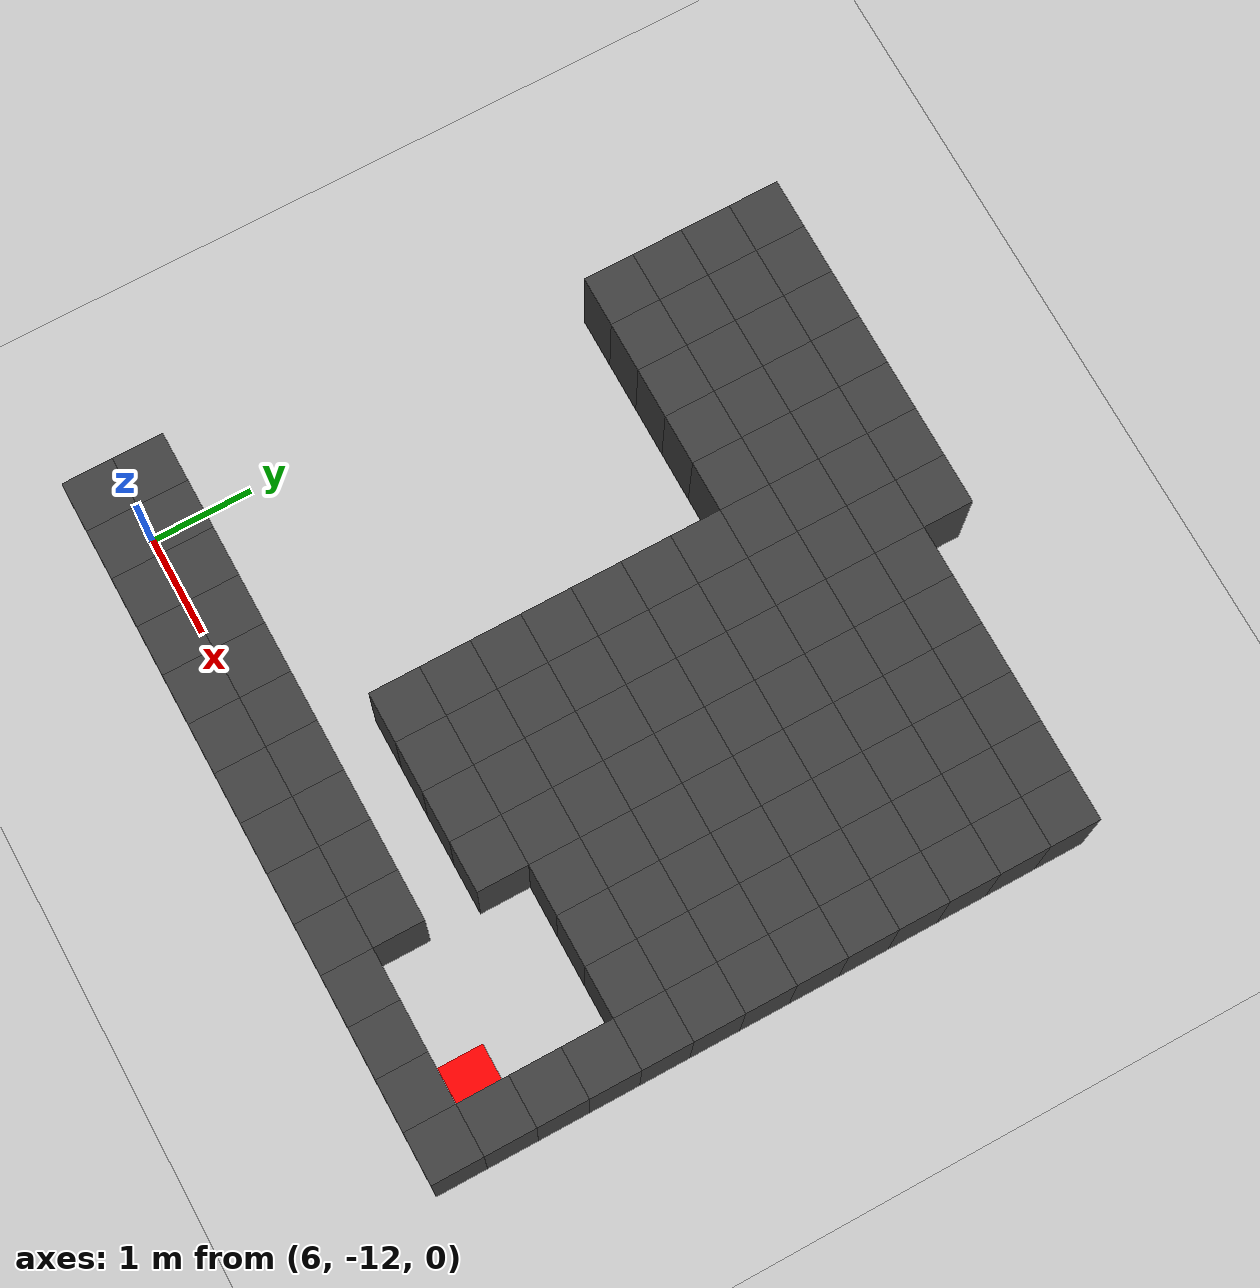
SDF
<sdf version="1.7">
 <world name="map_10777">
  <model name="ground_plane">
   <static>true</static>
   <link name="link">
    <collision name="collision">
     <geometry><plane><normal>0 0 1</normal><size>200 200</size></plane></geometry>
    </collision>
    <visual name="visual">
     <geometry><plane><normal>0 0 1</normal><size>200 200</size></plane></geometry>
     <material><ambient>0.8 0.8 0.8 1</ambient><diffuse>0.8 0.8 0.8 1</diffuse></material>
    </visual>
   </link>
  </model>
  <model name="maze_environment">
   <static>true</static>
   <link name="wall_1602">
    <pose>6.250 -5.750 0.500 0 0 0</pose>
    <collision name="col"><geometry><box><size>0.5 0.5 1.0</size></box></geometry></collision>
    <visual name="vis">
     <geometry><box><size>0.5 0.5 1.0</size></box></geometry>
     <material><ambient>0.15 0.15 0.15 1</ambient><diffuse>0.25 0.25 0.25 1</diffuse></material>
    </visual>
   </link>
   <link name="wall_1603">
    <pose>6.750 -5.750 0.500 0 0 0</pose>
    <collision name="col"><geometry><box><size>0.5 0.5 1.0</size></box></geometry></collision>
    <visual name="vis">
     <geometry><box><size>0.5 0.5 1.0</size></box></geometry>
     <material><ambient>0.15 0.15 0.15 1</ambient><diffuse>0.25 0.25 0.25 1</diffuse></material>
    </visual>
   </link>
   <link name="wall_1604">
    <pose>7.250 -5.750 0.500 0 0 0</pose>
    <collision name="col"><geometry><box><size>0.5 0.5 1.0</size></box></geometry></collision>
    <visual name="vis">
     <geometry><box><size>0.5 0.5 1.0</size></box></geometry>
     <material><ambient>0.15 0.15 0.15 1</ambient><diffuse>0.25 0.25 0.25 1</diffuse></material>
    </visual>
   </link>
   <link name="wall_1605">
    <pose>7.750 -5.750 0.500 0 0 0</pose>
    <collision name="col"><geometry><box><size>0.5 0.5 1.0</size></box></geometry></collision>
    <visual name="vis">
     <geometry><box><size>0.5 0.5 1.0</size></box></geometry>
     <material><ambient>0.15 0.15 0.15 1</ambient><diffuse>0.25 0.25 0.25 1</diffuse></material>
    </visual>
   </link>
   <link name="wall_1606">
    <pose>8.250 -5.750 0.500 0 0 0</pose>
    <collision name="col"><geometry><box><size>0.5 0.5 1.0</size></box></geometry></collision>
    <visual name="vis">
     <geometry><box><size>0.5 0.5 1.0</size></box></geometry>
     <material><ambient>0.15 0.15 0.15 1</ambient><diffuse>0.25 0.25 0.25 1</diffuse></material>
    </visual>
   </link>
   <link name="wall_1607">
    <pose>8.750 -5.750 0.500 0 0 0</pose>
    <collision name="col"><geometry><box><size>0.5 0.5 1.0</size></box></geometry></collision>
    <visual name="vis">
     <geometry><box><size>0.5 0.5 1.0</size></box></geometry>
     <material><ambient>0.15 0.15 0.15 1</ambient><diffuse>0.25 0.25 0.25 1</diffuse></material>
    </visual>
   </link>
   <link name="wall_1608">
    <pose>9.250 -5.750 0.500 0 0 0</pose>
    <collision name="col"><geometry><box><size>0.5 0.5 1.0</size></box></geometry></collision>
    <visual name="vis">
     <geometry><box><size>0.5 0.5 1.0</size></box></geometry>
     <material><ambient>0.15 0.15 0.15 1</ambient><diffuse>0.25 0.25 0.25 1</diffuse></material>
    </visual>
   </link>
   <link name="wall_1641">
    <pose>6.250 -6.250 0.500 0 0 0</pose>
    <collision name="col"><geometry><box><size>0.5 0.5 1.0</size></box></geometry></collision>
    <visual name="vis">
     <geometry><box><size>0.5 0.5 1.0</size></box></geometry>
     <material><ambient>0.15 0.15 0.15 1</ambient><diffuse>0.25 0.25 0.25 1</diffuse></material>
    </visual>
   </link>
   <link name="wall_1642">
    <pose>6.750 -6.250 0.500 0 0 0</pose>
    <collision name="col"><geometry><box><size>0.5 0.5 1.0</size></box></geometry></collision>
    <visual name="vis">
     <geometry><box><size>0.5 0.5 1.0</size></box></geometry>
     <material><ambient>0.15 0.15 0.15 1</ambient><diffuse>0.25 0.25 0.25 1</diffuse></material>
    </visual>
   </link>
   <link name="wall_1643">
    <pose>7.250 -6.250 0.500 0 0 0</pose>
    <collision name="col"><geometry><box><size>0.5 0.5 1.0</size></box></geometry></collision>
    <visual name="vis">
     <geometry><box><size>0.5 0.5 1.0</size></box></geometry>
     <material><ambient>0.15 0.15 0.15 1</ambient><diffuse>0.25 0.25 0.25 1</diffuse></material>
    </visual>
   </link>
   <link name="wall_1644">
    <pose>7.750 -6.250 0.500 0 0 0</pose>
    <collision name="col"><geometry><box><size>0.5 0.5 1.0</size></box></geometry></collision>
    <visual name="vis">
     <geometry><box><size>0.5 0.5 1.0</size></box></geometry>
     <material><ambient>0.15 0.15 0.15 1</ambient><diffuse>0.25 0.25 0.25 1</diffuse></material>
    </visual>
   </link>
   <link name="wall_1645">
    <pose>8.250 -6.250 0.500 0 0 0</pose>
    <collision name="col"><geometry><box><size>0.5 0.5 1.0</size></box></geometry></collision>
    <visual name="vis">
     <geometry><box><size>0.5 0.5 1.0</size></box></geometry>
     <material><ambient>0.15 0.15 0.15 1</ambient><diffuse>0.25 0.25 0.25 1</diffuse></material>
    </visual>
   </link>
   <link name="wall_1646">
    <pose>8.750 -6.250 0.500 0 0 0</pose>
    <collision name="col"><geometry><box><size>0.5 0.5 1.0</size></box></geometry></collision>
    <visual name="vis">
     <geometry><box><size>0.5 0.5 1.0</size></box></geometry>
     <material><ambient>0.15 0.15 0.15 1</ambient><diffuse>0.25 0.25 0.25 1</diffuse></material>
    </visual>
   </link>
   <link name="wall_1647">
    <pose>9.250 -6.250 0.500 0 0 0</pose>
    <collision name="col"><geometry><box><size>0.5 0.5 1.0</size></box></geometry></collision>
    <visual name="vis">
     <geometry><box><size>0.5 0.5 1.0</size></box></geometry>
     <material><ambient>0.15 0.15 0.15 1</ambient><diffuse>0.25 0.25 0.25 1</diffuse></material>
    </visual>
   </link>
   <link name="wall_1648">
    <pose>9.750 -6.250 0.500 0 0 0</pose>
    <collision name="col"><geometry><box><size>0.5 0.5 1.0</size></box></geometry></collision>
    <visual name="vis">
     <geometry><box><size>0.5 0.5 1.0</size></box></geometry>
     <material><ambient>0.15 0.15 0.15 1</ambient><diffuse>0.25 0.25 0.25 1</diffuse></material>
    </visual>
   </link>
   <link name="wall_1649">
    <pose>10.250 -6.250 0.500 0 0 0</pose>
    <collision name="col"><geometry><box><size>0.5 0.5 1.0</size></box></geometry></collision>
    <visual name="vis">
     <geometry><box><size>0.5 0.5 1.0</size></box></geometry>
     <material><ambient>0.15 0.15 0.15 1</ambient><diffuse>0.25 0.25 0.25 1</diffuse></material>
    </visual>
   </link>
   <link name="wall_1650">
    <pose>10.750 -6.250 0.500 0 0 0</pose>
    <collision name="col"><geometry><box><size>0.5 0.5 1.0</size></box></geometry></collision>
    <visual name="vis">
     <geometry><box><size>0.5 0.5 1.0</size></box></geometry>
     <material><ambient>0.15 0.15 0.15 1</ambient><diffuse>0.25 0.25 0.25 1</diffuse></material>
    </visual>
   </link>
   <link name="wall_1651">
    <pose>11.250 -6.250 0.500 0 0 0</pose>
    <collision name="col"><geometry><box><size>0.5 0.5 1.0</size></box></geometry></collision>
    <visual name="vis">
     <geometry><box><size>0.5 0.5 1.0</size></box></geometry>
     <material><ambient>0.15 0.15 0.15 1</ambient><diffuse>0.25 0.25 0.25 1</diffuse></material>
    </visual>
   </link>
   <link name="wall_1652">
    <pose>11.750 -6.250 0.500 0 0 0</pose>
    <collision name="col"><geometry><box><size>0.5 0.5 1.0</size></box></geometry></collision>
    <visual name="vis">
     <geometry><box><size>0.5 0.5 1.0</size></box></geometry>
     <material><ambient>0.15 0.15 0.15 1</ambient><diffuse>0.25 0.25 0.25 1</diffuse></material>
    </visual>
   </link>
   <link name="wall_1653">
    <pose>12.250 -6.250 0.500 0 0 0</pose>
    <collision name="col"><geometry><box><size>0.5 0.5 1.0</size></box></geometry></collision>
    <visual name="vis">
     <geometry><box><size>0.5 0.5 1.0</size></box></geometry>
     <material><ambient>0.15 0.15 0.15 1</ambient><diffuse>0.25 0.25 0.25 1</diffuse></material>
    </visual>
   </link>
   <link name="wall_1680">
    <pose>6.250 -6.750 0.500 0 0 0</pose>
    <collision name="col"><geometry><box><size>0.5 0.5 1.0</size></box></geometry></collision>
    <visual name="vis">
     <geometry><box><size>0.5 0.5 1.0</size></box></geometry>
     <material><ambient>0.15 0.15 0.15 1</ambient><diffuse>0.25 0.25 0.25 1</diffuse></material>
    </visual>
   </link>
   <link name="wall_1681">
    <pose>6.750 -6.750 0.500 0 0 0</pose>
    <collision name="col"><geometry><box><size>0.5 0.5 1.0</size></box></geometry></collision>
    <visual name="vis">
     <geometry><box><size>0.5 0.5 1.0</size></box></geometry>
     <material><ambient>0.15 0.15 0.15 1</ambient><diffuse>0.25 0.25 0.25 1</diffuse></material>
    </visual>
   </link>
   <link name="wall_1682">
    <pose>7.250 -6.750 0.500 0 0 0</pose>
    <collision name="col"><geometry><box><size>0.5 0.5 1.0</size></box></geometry></collision>
    <visual name="vis">
     <geometry><box><size>0.5 0.5 1.0</size></box></geometry>
     <material><ambient>0.15 0.15 0.15 1</ambient><diffuse>0.25 0.25 0.25 1</diffuse></material>
    </visual>
   </link>
   <link name="wall_1683">
    <pose>7.750 -6.750 0.500 0 0 0</pose>
    <collision name="col"><geometry><box><size>0.5 0.5 1.0</size></box></geometry></collision>
    <visual name="vis">
     <geometry><box><size>0.5 0.5 1.0</size></box></geometry>
     <material><ambient>0.15 0.15 0.15 1</ambient><diffuse>0.25 0.25 0.25 1</diffuse></material>
    </visual>
   </link>
   <link name="wall_1684">
    <pose>8.250 -6.750 0.500 0 0 0</pose>
    <collision name="col"><geometry><box><size>0.5 0.5 1.0</size></box></geometry></collision>
    <visual name="vis">
     <geometry><box><size>0.5 0.5 1.0</size></box></geometry>
     <material><ambient>0.15 0.15 0.15 1</ambient><diffuse>0.25 0.25 0.25 1</diffuse></material>
    </visual>
   </link>
   <link name="wall_1685">
    <pose>8.750 -6.750 0.500 0 0 0</pose>
    <collision name="col"><geometry><box><size>0.5 0.5 1.0</size></box></geometry></collision>
    <visual name="vis">
     <geometry><box><size>0.5 0.5 1.0</size></box></geometry>
     <material><ambient>0.15 0.15 0.15 1</ambient><diffuse>0.25 0.25 0.25 1</diffuse></material>
    </visual>
   </link>
   <link name="wall_1686">
    <pose>9.250 -6.750 0.500 0 0 0</pose>
    <collision name="col"><geometry><box><size>0.5 0.5 1.0</size></box></geometry></collision>
    <visual name="vis">
     <geometry><box><size>0.5 0.5 1.0</size></box></geometry>
     <material><ambient>0.15 0.15 0.15 1</ambient><diffuse>0.25 0.25 0.25 1</diffuse></material>
    </visual>
   </link>
   <link name="wall_1687">
    <pose>9.750 -6.750 0.500 0 0 0</pose>
    <collision name="col"><geometry><box><size>0.5 0.5 1.0</size></box></geometry></collision>
    <visual name="vis">
     <geometry><box><size>0.5 0.5 1.0</size></box></geometry>
     <material><ambient>0.15 0.15 0.15 1</ambient><diffuse>0.25 0.25 0.25 1</diffuse></material>
    </visual>
   </link>
   <link name="wall_1688">
    <pose>10.250 -6.750 0.500 0 0 0</pose>
    <collision name="col"><geometry><box><size>0.5 0.5 1.0</size></box></geometry></collision>
    <visual name="vis">
     <geometry><box><size>0.5 0.5 1.0</size></box></geometry>
     <material><ambient>0.15 0.15 0.15 1</ambient><diffuse>0.25 0.25 0.25 1</diffuse></material>
    </visual>
   </link>
   <link name="wall_1689">
    <pose>10.750 -6.750 0.500 0 0 0</pose>
    <collision name="col"><geometry><box><size>0.5 0.5 1.0</size></box></geometry></collision>
    <visual name="vis">
     <geometry><box><size>0.5 0.5 1.0</size></box></geometry>
     <material><ambient>0.15 0.15 0.15 1</ambient><diffuse>0.25 0.25 0.25 1</diffuse></material>
    </visual>
   </link>
   <link name="wall_1690">
    <pose>11.250 -6.750 0.500 0 0 0</pose>
    <collision name="col"><geometry><box><size>0.5 0.5 1.0</size></box></geometry></collision>
    <visual name="vis">
     <geometry><box><size>0.5 0.5 1.0</size></box></geometry>
     <material><ambient>0.15 0.15 0.15 1</ambient><diffuse>0.25 0.25 0.25 1</diffuse></material>
    </visual>
   </link>
   <link name="wall_1691">
    <pose>11.750 -6.750 0.500 0 0 0</pose>
    <collision name="col"><geometry><box><size>0.5 0.5 1.0</size></box></geometry></collision>
    <visual name="vis">
     <geometry><box><size>0.5 0.5 1.0</size></box></geometry>
     <material><ambient>0.15 0.15 0.15 1</ambient><diffuse>0.25 0.25 0.25 1</diffuse></material>
    </visual>
   </link>
   <link name="wall_1692">
    <pose>12.250 -6.750 0.500 0 0 0</pose>
    <collision name="col"><geometry><box><size>0.5 0.5 1.0</size></box></geometry></collision>
    <visual name="vis">
     <geometry><box><size>0.5 0.5 1.0</size></box></geometry>
     <material><ambient>0.15 0.15 0.15 1</ambient><diffuse>0.25 0.25 0.25 1</diffuse></material>
    </visual>
   </link>
   <link name="wall_1719">
    <pose>6.250 -7.250 0.500 0 0 0</pose>
    <collision name="col"><geometry><box><size>0.5 0.5 1.0</size></box></geometry></collision>
    <visual name="vis">
     <geometry><box><size>0.5 0.5 1.0</size></box></geometry>
     <material><ambient>0.15 0.15 0.15 1</ambient><diffuse>0.25 0.25 0.25 1</diffuse></material>
    </visual>
   </link>
   <link name="wall_1720">
    <pose>6.750 -7.250 0.500 0 0 0</pose>
    <collision name="col"><geometry><box><size>0.5 0.5 1.0</size></box></geometry></collision>
    <visual name="vis">
     <geometry><box><size>0.5 0.5 1.0</size></box></geometry>
     <material><ambient>0.15 0.15 0.15 1</ambient><diffuse>0.25 0.25 0.25 1</diffuse></material>
    </visual>
   </link>
   <link name="wall_1721">
    <pose>7.250 -7.250 0.500 0 0 0</pose>
    <collision name="col"><geometry><box><size>0.5 0.5 1.0</size></box></geometry></collision>
    <visual name="vis">
     <geometry><box><size>0.5 0.5 1.0</size></box></geometry>
     <material><ambient>0.15 0.15 0.15 1</ambient><diffuse>0.25 0.25 0.25 1</diffuse></material>
    </visual>
   </link>
   <link name="wall_1722">
    <pose>7.750 -7.250 0.500 0 0 0</pose>
    <collision name="col"><geometry><box><size>0.5 0.5 1.0</size></box></geometry></collision>
    <visual name="vis">
     <geometry><box><size>0.5 0.5 1.0</size></box></geometry>
     <material><ambient>0.15 0.15 0.15 1</ambient><diffuse>0.25 0.25 0.25 1</diffuse></material>
    </visual>
   </link>
   <link name="wall_1723">
    <pose>8.250 -7.250 0.500 0 0 0</pose>
    <collision name="col"><geometry><box><size>0.5 0.5 1.0</size></box></geometry></collision>
    <visual name="vis">
     <geometry><box><size>0.5 0.5 1.0</size></box></geometry>
     <material><ambient>0.15 0.15 0.15 1</ambient><diffuse>0.25 0.25 0.25 1</diffuse></material>
    </visual>
   </link>
   <link name="wall_1724">
    <pose>8.750 -7.250 0.500 0 0 0</pose>
    <collision name="col"><geometry><box><size>0.5 0.5 1.0</size></box></geometry></collision>
    <visual name="vis">
     <geometry><box><size>0.5 0.5 1.0</size></box></geometry>
     <material><ambient>0.15 0.15 0.15 1</ambient><diffuse>0.25 0.25 0.25 1</diffuse></material>
    </visual>
   </link>
   <link name="wall_1725">
    <pose>9.250 -7.250 0.500 0 0 0</pose>
    <collision name="col"><geometry><box><size>0.5 0.5 1.0</size></box></geometry></collision>
    <visual name="vis">
     <geometry><box><size>0.5 0.5 1.0</size></box></geometry>
     <material><ambient>0.15 0.15 0.15 1</ambient><diffuse>0.25 0.25 0.25 1</diffuse></material>
    </visual>
   </link>
   <link name="wall_1726">
    <pose>9.750 -7.250 0.500 0 0 0</pose>
    <collision name="col"><geometry><box><size>0.5 0.5 1.0</size></box></geometry></collision>
    <visual name="vis">
     <geometry><box><size>0.5 0.5 1.0</size></box></geometry>
     <material><ambient>0.15 0.15 0.15 1</ambient><diffuse>0.25 0.25 0.25 1</diffuse></material>
    </visual>
   </link>
   <link name="wall_1727">
    <pose>10.250 -7.250 0.500 0 0 0</pose>
    <collision name="col"><geometry><box><size>0.5 0.5 1.0</size></box></geometry></collision>
    <visual name="vis">
     <geometry><box><size>0.5 0.5 1.0</size></box></geometry>
     <material><ambient>0.15 0.15 0.15 1</ambient><diffuse>0.25 0.25 0.25 1</diffuse></material>
    </visual>
   </link>
   <link name="wall_1728">
    <pose>10.750 -7.250 0.500 0 0 0</pose>
    <collision name="col"><geometry><box><size>0.5 0.5 1.0</size></box></geometry></collision>
    <visual name="vis">
     <geometry><box><size>0.5 0.5 1.0</size></box></geometry>
     <material><ambient>0.15 0.15 0.15 1</ambient><diffuse>0.25 0.25 0.25 1</diffuse></material>
    </visual>
   </link>
   <link name="wall_1729">
    <pose>11.250 -7.250 0.500 0 0 0</pose>
    <collision name="col"><geometry><box><size>0.5 0.5 1.0</size></box></geometry></collision>
    <visual name="vis">
     <geometry><box><size>0.5 0.5 1.0</size></box></geometry>
     <material><ambient>0.15 0.15 0.15 1</ambient><diffuse>0.25 0.25 0.25 1</diffuse></material>
    </visual>
   </link>
   <link name="wall_1730">
    <pose>11.750 -7.250 0.500 0 0 0</pose>
    <collision name="col"><geometry><box><size>0.5 0.5 1.0</size></box></geometry></collision>
    <visual name="vis">
     <geometry><box><size>0.5 0.5 1.0</size></box></geometry>
     <material><ambient>0.15 0.15 0.15 1</ambient><diffuse>0.25 0.25 0.25 1</diffuse></material>
    </visual>
   </link>
   <link name="wall_1731">
    <pose>12.250 -7.250 0.500 0 0 0</pose>
    <collision name="col"><geometry><box><size>0.5 0.5 1.0</size></box></geometry></collision>
    <visual name="vis">
     <geometry><box><size>0.5 0.5 1.0</size></box></geometry>
     <material><ambient>0.15 0.15 0.15 1</ambient><diffuse>0.25 0.25 0.25 1</diffuse></material>
    </visual>
   </link>
   <link name="wall_1766">
    <pose>8.750 -7.750 0.500 0 0 0</pose>
    <collision name="col"><geometry><box><size>0.5 0.5 1.0</size></box></geometry></collision>
    <visual name="vis">
     <geometry><box><size>0.5 0.5 1.0</size></box></geometry>
     <material><ambient>0.15 0.15 0.15 1</ambient><diffuse>0.25 0.25 0.25 1</diffuse></material>
    </visual>
   </link>
   <link name="wall_1767">
    <pose>9.250 -7.750 0.500 0 0 0</pose>
    <collision name="col"><geometry><box><size>0.5 0.5 1.0</size></box></geometry></collision>
    <visual name="vis">
     <geometry><box><size>0.5 0.5 1.0</size></box></geometry>
     <material><ambient>0.15 0.15 0.15 1</ambient><diffuse>0.25 0.25 0.25 1</diffuse></material>
    </visual>
   </link>
   <link name="wall_1768">
    <pose>9.750 -7.750 0.500 0 0 0</pose>
    <collision name="col"><geometry><box><size>0.5 0.5 1.0</size></box></geometry></collision>
    <visual name="vis">
     <geometry><box><size>0.5 0.5 1.0</size></box></geometry>
     <material><ambient>0.15 0.15 0.15 1</ambient><diffuse>0.25 0.25 0.25 1</diffuse></material>
    </visual>
   </link>
   <link name="wall_1769">
    <pose>10.250 -7.750 0.500 0 0 0</pose>
    <collision name="col"><geometry><box><size>0.5 0.5 1.0</size></box></geometry></collision>
    <visual name="vis">
     <geometry><box><size>0.5 0.5 1.0</size></box></geometry>
     <material><ambient>0.15 0.15 0.15 1</ambient><diffuse>0.25 0.25 0.25 1</diffuse></material>
    </visual>
   </link>
   <link name="wall_1770">
    <pose>10.750 -7.750 0.500 0 0 0</pose>
    <collision name="col"><geometry><box><size>0.5 0.5 1.0</size></box></geometry></collision>
    <visual name="vis">
     <geometry><box><size>0.5 0.5 1.0</size></box></geometry>
     <material><ambient>0.15 0.15 0.15 1</ambient><diffuse>0.25 0.25 0.25 1</diffuse></material>
    </visual>
   </link>
   <link name="wall_1771">
    <pose>11.250 -7.750 0.500 0 0 0</pose>
    <collision name="col"><geometry><box><size>0.5 0.5 1.0</size></box></geometry></collision>
    <visual name="vis">
     <geometry><box><size>0.5 0.5 1.0</size></box></geometry>
     <material><ambient>0.15 0.15 0.15 1</ambient><diffuse>0.25 0.25 0.25 1</diffuse></material>
    </visual>
   </link>
   <link name="wall_1772">
    <pose>11.750 -7.750 0.500 0 0 0</pose>
    <collision name="col"><geometry><box><size>0.5 0.5 1.0</size></box></geometry></collision>
    <visual name="vis">
     <geometry><box><size>0.5 0.5 1.0</size></box></geometry>
     <material><ambient>0.15 0.15 0.15 1</ambient><diffuse>0.25 0.25 0.25 1</diffuse></material>
    </visual>
   </link>
   <link name="wall_1773">
    <pose>12.250 -7.750 0.500 0 0 0</pose>
    <collision name="col"><geometry><box><size>0.5 0.5 1.0</size></box></geometry></collision>
    <visual name="vis">
     <geometry><box><size>0.5 0.5 1.0</size></box></geometry>
     <material><ambient>0.15 0.15 0.15 1</ambient><diffuse>0.25 0.25 0.25 1</diffuse></material>
    </visual>
   </link>
   <link name="wall_1808">
    <pose>8.750 -8.250 0.500 0 0 0</pose>
    <collision name="col"><geometry><box><size>0.5 0.5 1.0</size></box></geometry></collision>
    <visual name="vis">
     <geometry><box><size>0.5 0.5 1.0</size></box></geometry>
     <material><ambient>0.15 0.15 0.15 1</ambient><diffuse>0.25 0.25 0.25 1</diffuse></material>
    </visual>
   </link>
   <link name="wall_1809">
    <pose>9.250 -8.250 0.500 0 0 0</pose>
    <collision name="col"><geometry><box><size>0.5 0.5 1.0</size></box></geometry></collision>
    <visual name="vis">
     <geometry><box><size>0.5 0.5 1.0</size></box></geometry>
     <material><ambient>0.15 0.15 0.15 1</ambient><diffuse>0.25 0.25 0.25 1</diffuse></material>
    </visual>
   </link>
   <link name="wall_1810">
    <pose>9.750 -8.250 0.500 0 0 0</pose>
    <collision name="col"><geometry><box><size>0.5 0.5 1.0</size></box></geometry></collision>
    <visual name="vis">
     <geometry><box><size>0.5 0.5 1.0</size></box></geometry>
     <material><ambient>0.15 0.15 0.15 1</ambient><diffuse>0.25 0.25 0.25 1</diffuse></material>
    </visual>
   </link>
   <link name="wall_1811">
    <pose>10.250 -8.250 0.500 0 0 0</pose>
    <collision name="col"><geometry><box><size>0.5 0.5 1.0</size></box></geometry></collision>
    <visual name="vis">
     <geometry><box><size>0.5 0.5 1.0</size></box></geometry>
     <material><ambient>0.15 0.15 0.15 1</ambient><diffuse>0.25 0.25 0.25 1</diffuse></material>
    </visual>
   </link>
   <link name="wall_1812">
    <pose>10.750 -8.250 0.500 0 0 0</pose>
    <collision name="col"><geometry><box><size>0.5 0.5 1.0</size></box></geometry></collision>
    <visual name="vis">
     <geometry><box><size>0.5 0.5 1.0</size></box></geometry>
     <material><ambient>0.15 0.15 0.15 1</ambient><diffuse>0.25 0.25 0.25 1</diffuse></material>
    </visual>
   </link>
   <link name="wall_1813">
    <pose>11.250 -8.250 0.500 0 0 0</pose>
    <collision name="col"><geometry><box><size>0.5 0.5 1.0</size></box></geometry></collision>
    <visual name="vis">
     <geometry><box><size>0.5 0.5 1.0</size></box></geometry>
     <material><ambient>0.15 0.15 0.15 1</ambient><diffuse>0.25 0.25 0.25 1</diffuse></material>
    </visual>
   </link>
   <link name="wall_1814">
    <pose>11.750 -8.250 0.500 0 0 0</pose>
    <collision name="col"><geometry><box><size>0.5 0.5 1.0</size></box></geometry></collision>
    <visual name="vis">
     <geometry><box><size>0.5 0.5 1.0</size></box></geometry>
     <material><ambient>0.15 0.15 0.15 1</ambient><diffuse>0.25 0.25 0.25 1</diffuse></material>
    </visual>
   </link>
   <link name="wall_1815">
    <pose>12.250 -8.250 0.500 0 0 0</pose>
    <collision name="col"><geometry><box><size>0.5 0.5 1.0</size></box></geometry></collision>
    <visual name="vis">
     <geometry><box><size>0.5 0.5 1.0</size></box></geometry>
     <material><ambient>0.15 0.15 0.15 1</ambient><diffuse>0.25 0.25 0.25 1</diffuse></material>
    </visual>
   </link>
   <link name="wall_1850">
    <pose>8.750 -8.750 0.500 0 0 0</pose>
    <collision name="col"><geometry><box><size>0.5 0.5 1.0</size></box></geometry></collision>
    <visual name="vis">
     <geometry><box><size>0.5 0.5 1.0</size></box></geometry>
     <material><ambient>0.15 0.15 0.15 1</ambient><diffuse>0.25 0.25 0.25 1</diffuse></material>
    </visual>
   </link>
   <link name="wall_1851">
    <pose>9.250 -8.750 0.500 0 0 0</pose>
    <collision name="col"><geometry><box><size>0.5 0.5 1.0</size></box></geometry></collision>
    <visual name="vis">
     <geometry><box><size>0.5 0.5 1.0</size></box></geometry>
     <material><ambient>0.15 0.15 0.15 1</ambient><diffuse>0.25 0.25 0.25 1</diffuse></material>
    </visual>
   </link>
   <link name="wall_1852">
    <pose>9.750 -8.750 0.500 0 0 0</pose>
    <collision name="col"><geometry><box><size>0.5 0.5 1.0</size></box></geometry></collision>
    <visual name="vis">
     <geometry><box><size>0.5 0.5 1.0</size></box></geometry>
     <material><ambient>0.15 0.15 0.15 1</ambient><diffuse>0.25 0.25 0.25 1</diffuse></material>
    </visual>
   </link>
   <link name="wall_1853">
    <pose>10.250 -8.750 0.500 0 0 0</pose>
    <collision name="col"><geometry><box><size>0.5 0.5 1.0</size></box></geometry></collision>
    <visual name="vis">
     <geometry><box><size>0.5 0.5 1.0</size></box></geometry>
     <material><ambient>0.15 0.15 0.15 1</ambient><diffuse>0.25 0.25 0.25 1</diffuse></material>
    </visual>
   </link>
   <link name="wall_1854">
    <pose>10.750 -8.750 0.500 0 0 0</pose>
    <collision name="col"><geometry><box><size>0.5 0.5 1.0</size></box></geometry></collision>
    <visual name="vis">
     <geometry><box><size>0.5 0.5 1.0</size></box></geometry>
     <material><ambient>0.15 0.15 0.15 1</ambient><diffuse>0.25 0.25 0.25 1</diffuse></material>
    </visual>
   </link>
   <link name="wall_1855">
    <pose>11.250 -8.750 0.500 0 0 0</pose>
    <collision name="col"><geometry><box><size>0.5 0.5 1.0</size></box></geometry></collision>
    <visual name="vis">
     <geometry><box><size>0.5 0.5 1.0</size></box></geometry>
     <material><ambient>0.15 0.15 0.15 1</ambient><diffuse>0.25 0.25 0.25 1</diffuse></material>
    </visual>
   </link>
   <link name="wall_1856">
    <pose>11.750 -8.750 0.500 0 0 0</pose>
    <collision name="col"><geometry><box><size>0.5 0.5 1.0</size></box></geometry></collision>
    <visual name="vis">
     <geometry><box><size>0.5 0.5 1.0</size></box></geometry>
     <material><ambient>0.15 0.15 0.15 1</ambient><diffuse>0.25 0.25 0.25 1</diffuse></material>
    </visual>
   </link>
   <link name="wall_1857">
    <pose>12.250 -8.750 0.500 0 0 0</pose>
    <collision name="col"><geometry><box><size>0.5 0.5 1.0</size></box></geometry></collision>
    <visual name="vis">
     <geometry><box><size>0.5 0.5 1.0</size></box></geometry>
     <material><ambient>0.15 0.15 0.15 1</ambient><diffuse>0.25 0.25 0.25 1</diffuse></material>
    </visual>
   </link>
   <link name="wall_1892">
    <pose>8.750 -9.250 0.500 0 0 0</pose>
    <collision name="col"><geometry><box><size>0.5 0.5 1.0</size></box></geometry></collision>
    <visual name="vis">
     <geometry><box><size>0.5 0.5 1.0</size></box></geometry>
     <material><ambient>0.15 0.15 0.15 1</ambient><diffuse>0.25 0.25 0.25 1</diffuse></material>
    </visual>
   </link>
   <link name="wall_1893">
    <pose>9.250 -9.250 0.500 0 0 0</pose>
    <collision name="col"><geometry><box><size>0.5 0.5 1.0</size></box></geometry></collision>
    <visual name="vis">
     <geometry><box><size>0.5 0.5 1.0</size></box></geometry>
     <material><ambient>0.15 0.15 0.15 1</ambient><diffuse>0.25 0.25 0.25 1</diffuse></material>
    </visual>
   </link>
   <link name="wall_1894">
    <pose>9.750 -9.250 0.500 0 0 0</pose>
    <collision name="col"><geometry><box><size>0.5 0.5 1.0</size></box></geometry></collision>
    <visual name="vis">
     <geometry><box><size>0.5 0.5 1.0</size></box></geometry>
     <material><ambient>0.15 0.15 0.15 1</ambient><diffuse>0.25 0.25 0.25 1</diffuse></material>
    </visual>
   </link>
   <link name="wall_1895">
    <pose>10.250 -9.250 0.500 0 0 0</pose>
    <collision name="col"><geometry><box><size>0.5 0.5 1.0</size></box></geometry></collision>
    <visual name="vis">
     <geometry><box><size>0.5 0.5 1.0</size></box></geometry>
     <material><ambient>0.15 0.15 0.15 1</ambient><diffuse>0.25 0.25 0.25 1</diffuse></material>
    </visual>
   </link>
   <link name="wall_1896">
    <pose>10.750 -9.250 0.500 0 0 0</pose>
    <collision name="col"><geometry><box><size>0.5 0.5 1.0</size></box></geometry></collision>
    <visual name="vis">
     <geometry><box><size>0.5 0.5 1.0</size></box></geometry>
     <material><ambient>0.15 0.15 0.15 1</ambient><diffuse>0.25 0.25 0.25 1</diffuse></material>
    </visual>
   </link>
   <link name="wall_1897">
    <pose>11.250 -9.250 0.500 0 0 0</pose>
    <collision name="col"><geometry><box><size>0.5 0.5 1.0</size></box></geometry></collision>
    <visual name="vis">
     <geometry><box><size>0.5 0.5 1.0</size></box></geometry>
     <material><ambient>0.15 0.15 0.15 1</ambient><diffuse>0.25 0.25 0.25 1</diffuse></material>
    </visual>
   </link>
   <link name="wall_1898">
    <pose>11.750 -9.250 0.500 0 0 0</pose>
    <collision name="col"><geometry><box><size>0.5 0.5 1.0</size></box></geometry></collision>
    <visual name="vis">
     <geometry><box><size>0.5 0.5 1.0</size></box></geometry>
     <material><ambient>0.15 0.15 0.15 1</ambient><diffuse>0.25 0.25 0.25 1</diffuse></material>
    </visual>
   </link>
   <link name="wall_1899">
    <pose>12.250 -9.250 0.500 0 0 0</pose>
    <collision name="col"><geometry><box><size>0.5 0.5 1.0</size></box></geometry></collision>
    <visual name="vis">
     <geometry><box><size>0.5 0.5 1.0</size></box></geometry>
     <material><ambient>0.15 0.15 0.15 1</ambient><diffuse>0.25 0.25 0.25 1</diffuse></material>
    </visual>
   </link>
   <link name="wall_1933">
    <pose>8.750 -9.750 0.500 0 0 0</pose>
    <collision name="col"><geometry><box><size>0.5 0.5 1.0</size></box></geometry></collision>
    <visual name="vis">
     <geometry><box><size>0.5 0.5 1.0</size></box></geometry>
     <material><ambient>0.15 0.15 0.15 1</ambient><diffuse>0.25 0.25 0.25 1</diffuse></material>
    </visual>
   </link>
   <link name="wall_1934">
    <pose>9.250 -9.750 0.500 0 0 0</pose>
    <collision name="col"><geometry><box><size>0.5 0.5 1.0</size></box></geometry></collision>
    <visual name="vis">
     <geometry><box><size>0.5 0.5 1.0</size></box></geometry>
     <material><ambient>0.15 0.15 0.15 1</ambient><diffuse>0.25 0.25 0.25 1</diffuse></material>
    </visual>
   </link>
   <link name="wall_1935">
    <pose>9.750 -9.750 0.500 0 0 0</pose>
    <collision name="col"><geometry><box><size>0.5 0.5 1.0</size></box></geometry></collision>
    <visual name="vis">
     <geometry><box><size>0.5 0.5 1.0</size></box></geometry>
     <material><ambient>0.15 0.15 0.15 1</ambient><diffuse>0.25 0.25 0.25 1</diffuse></material>
    </visual>
   </link>
   <link name="wall_1936">
    <pose>10.250 -9.750 0.500 0 0 0</pose>
    <collision name="col"><geometry><box><size>0.5 0.5 1.0</size></box></geometry></collision>
    <visual name="vis">
     <geometry><box><size>0.5 0.5 1.0</size></box></geometry>
     <material><ambient>0.15 0.15 0.15 1</ambient><diffuse>0.25 0.25 0.25 1</diffuse></material>
    </visual>
   </link>
   <link name="wall_1937">
    <pose>10.750 -9.750 0.500 0 0 0</pose>
    <collision name="col"><geometry><box><size>0.5 0.5 1.0</size></box></geometry></collision>
    <visual name="vis">
     <geometry><box><size>0.5 0.5 1.0</size></box></geometry>
     <material><ambient>0.15 0.15 0.15 1</ambient><diffuse>0.25 0.25 0.25 1</diffuse></material>
    </visual>
   </link>
   <link name="wall_1938">
    <pose>11.250 -9.750 0.500 0 0 0</pose>
    <collision name="col"><geometry><box><size>0.5 0.5 1.0</size></box></geometry></collision>
    <visual name="vis">
     <geometry><box><size>0.5 0.5 1.0</size></box></geometry>
     <material><ambient>0.15 0.15 0.15 1</ambient><diffuse>0.25 0.25 0.25 1</diffuse></material>
    </visual>
   </link>
   <link name="wall_1939">
    <pose>11.750 -9.750 0.500 0 0 0</pose>
    <collision name="col"><geometry><box><size>0.5 0.5 1.0</size></box></geometry></collision>
    <visual name="vis">
     <geometry><box><size>0.5 0.5 1.0</size></box></geometry>
     <material><ambient>0.15 0.15 0.15 1</ambient><diffuse>0.25 0.25 0.25 1</diffuse></material>
    </visual>
   </link>
   <link name="wall_1940">
    <pose>12.250 -9.750 0.500 0 0 0</pose>
    <collision name="col"><geometry><box><size>0.5 0.5 1.0</size></box></geometry></collision>
    <visual name="vis">
     <geometry><box><size>0.5 0.5 1.0</size></box></geometry>
     <material><ambient>0.15 0.15 0.15 1</ambient><diffuse>0.25 0.25 0.25 1</diffuse></material>
    </visual>
   </link>
   <link name="wall_1976">
    <pose>8.750 -10.250 0.500 0 0 0</pose>
    <collision name="col"><geometry><box><size>0.5 0.5 1.0</size></box></geometry></collision>
    <visual name="vis">
     <geometry><box><size>0.5 0.5 1.0</size></box></geometry>
     <material><ambient>0.15 0.15 0.15 1</ambient><diffuse>0.25 0.25 0.25 1</diffuse></material>
    </visual>
   </link>
   <link name="wall_1977">
    <pose>9.250 -10.250 0.500 0 0 0</pose>
    <collision name="col"><geometry><box><size>0.5 0.5 1.0</size></box></geometry></collision>
    <visual name="vis">
     <geometry><box><size>0.5 0.5 1.0</size></box></geometry>
     <material><ambient>0.15 0.15 0.15 1</ambient><diffuse>0.25 0.25 0.25 1</diffuse></material>
    </visual>
   </link>
   <link name="wall_1978">
    <pose>9.750 -10.250 0.500 0 0 0</pose>
    <collision name="col"><geometry><box><size>0.5 0.5 1.0</size></box></geometry></collision>
    <visual name="vis">
     <geometry><box><size>0.5 0.5 1.0</size></box></geometry>
     <material><ambient>0.15 0.15 0.15 1</ambient><diffuse>0.25 0.25 0.25 1</diffuse></material>
    </visual>
   </link>
   <link name="wall_1979">
    <pose>10.250 -10.250 0.500 0 0 0</pose>
    <collision name="col"><geometry><box><size>0.5 0.5 1.0</size></box></geometry></collision>
    <visual name="vis">
     <geometry><box><size>0.5 0.5 1.0</size></box></geometry>
     <material><ambient>0.15 0.15 0.15 1</ambient><diffuse>0.25 0.25 0.25 1</diffuse></material>
    </visual>
   </link>
   <link name="wall_1980">
    <pose>10.750 -10.250 0.500 0 0 0</pose>
    <collision name="col"><geometry><box><size>0.5 0.5 1.0</size></box></geometry></collision>
    <visual name="vis">
     <geometry><box><size>0.5 0.5 1.0</size></box></geometry>
     <material><ambient>0.15 0.15 0.15 1</ambient><diffuse>0.25 0.25 0.25 1</diffuse></material>
    </visual>
   </link>
   <link name="wall_1981">
    <pose>11.250 -10.250 0.500 0 0 0</pose>
    <collision name="col"><geometry><box><size>0.5 0.5 1.0</size></box></geometry></collision>
    <visual name="vis">
     <geometry><box><size>0.5 0.5 1.0</size></box></geometry>
     <material><ambient>0.15 0.15 0.15 1</ambient><diffuse>0.25 0.25 0.25 1</diffuse></material>
    </visual>
   </link>
   <link name="wall_1982">
    <pose>11.750 -10.250 0.500 0 0 0</pose>
    <collision name="col"><geometry><box><size>0.5 0.5 1.0</size></box></geometry></collision>
    <visual name="vis">
     <geometry><box><size>0.5 0.5 1.0</size></box></geometry>
     <material><ambient>0.15 0.15 0.15 1</ambient><diffuse>0.25 0.25 0.25 1</diffuse></material>
    </visual>
   </link>
   <link name="wall_1983">
    <pose>12.250 -10.250 0.500 0 0 0</pose>
    <collision name="col"><geometry><box><size>0.5 0.5 1.0</size></box></geometry></collision>
    <visual name="vis">
     <geometry><box><size>0.5 0.5 1.0</size></box></geometry>
     <material><ambient>0.15 0.15 0.15 1</ambient><diffuse>0.25 0.25 0.25 1</diffuse></material>
    </visual>
   </link>
   <link name="wall_2019">
    <pose>8.750 -10.750 0.500 0 0 0</pose>
    <collision name="col"><geometry><box><size>0.5 0.5 1.0</size></box></geometry></collision>
    <visual name="vis">
     <geometry><box><size>0.5 0.5 1.0</size></box></geometry>
     <material><ambient>0.15 0.15 0.15 1</ambient><diffuse>0.25 0.25 0.25 1</diffuse></material>
    </visual>
   </link>
   <link name="wall_2020">
    <pose>9.250 -10.750 0.500 0 0 0</pose>
    <collision name="col"><geometry><box><size>0.5 0.5 1.0</size></box></geometry></collision>
    <visual name="vis">
     <geometry><box><size>0.5 0.5 1.0</size></box></geometry>
     <material><ambient>0.15 0.15 0.15 1</ambient><diffuse>0.25 0.25 0.25 1</diffuse></material>
    </visual>
   </link>
   <link name="wall_2021">
    <pose>9.750 -10.750 0.500 0 0 0</pose>
    <collision name="col"><geometry><box><size>0.5 0.5 1.0</size></box></geometry></collision>
    <visual name="vis">
     <geometry><box><size>0.5 0.5 1.0</size></box></geometry>
     <material><ambient>0.15 0.15 0.15 1</ambient><diffuse>0.25 0.25 0.25 1</diffuse></material>
    </visual>
   </link>
   <link name="wall_2022">
    <pose>10.250 -10.750 0.500 0 0 0</pose>
    <collision name="col"><geometry><box><size>0.5 0.5 1.0</size></box></geometry></collision>
    <visual name="vis">
     <geometry><box><size>0.5 0.5 1.0</size></box></geometry>
     <material><ambient>0.15 0.15 0.15 1</ambient><diffuse>0.25 0.25 0.25 1</diffuse></material>
    </visual>
   </link>
   <link name="wall_2023">
    <pose>12.250 -10.750 0.500 0 0 0</pose>
    <collision name="col"><geometry><box><size>0.5 0.5 1.0</size></box></geometry></collision>
    <visual name="vis">
     <geometry><box><size>0.5 0.5 1.0</size></box></geometry>
     <material><ambient>0.15 0.15 0.15 1</ambient><diffuse>0.25 0.25 0.25 1</diffuse></material>
    </visual>
   </link>
   <link name="wall_2059">
    <pose>12.250 -11.250 0.500 0 0 0</pose>
    <collision name="col"><geometry><box><size>0.5 0.5 1.0</size></box></geometry></collision>
    <visual name="vis">
     <geometry><box><size>0.5 0.5 1.0</size></box></geometry>
     <material><ambient>0.15 0.15 0.15 1</ambient><diffuse>0.25 0.25 0.25 1</diffuse></material>
    </visual>
   </link>
   <link name="wall_2096">
    <pose>5.750 -11.750 0.500 0 0 0</pose>
    <collision name="col"><geometry><box><size>0.5 0.5 1.0</size></box></geometry></collision>
    <visual name="vis">
     <geometry><box><size>0.5 0.5 1.0</size></box></geometry>
     <material><ambient>0.15 0.15 0.15 1</ambient><diffuse>0.25 0.25 0.25 1</diffuse></material>
    </visual>
   </link>
   <link name="wall_2097">
    <pose>6.250 -11.750 0.500 0 0 0</pose>
    <collision name="col"><geometry><box><size>0.5 0.5 1.0</size></box></geometry></collision>
    <visual name="vis">
     <geometry><box><size>0.5 0.5 1.0</size></box></geometry>
     <material><ambient>0.15 0.15 0.15 1</ambient><diffuse>0.25 0.25 0.25 1</diffuse></material>
    </visual>
   </link>
   <link name="wall_2098">
    <pose>6.750 -11.750 0.500 0 0 0</pose>
    <collision name="col"><geometry><box><size>0.5 0.5 1.0</size></box></geometry></collision>
    <visual name="vis">
     <geometry><box><size>0.5 0.5 1.0</size></box></geometry>
     <material><ambient>0.15 0.15 0.15 1</ambient><diffuse>0.25 0.25 0.25 1</diffuse></material>
    </visual>
   </link>
   <link name="wall_2099">
    <pose>7.250 -11.750 0.500 0 0 0</pose>
    <collision name="col"><geometry><box><size>0.5 0.5 1.0</size></box></geometry></collision>
    <visual name="vis">
     <geometry><box><size>0.5 0.5 1.0</size></box></geometry>
     <material><ambient>0.15 0.15 0.15 1</ambient><diffuse>0.25 0.25 0.25 1</diffuse></material>
    </visual>
   </link>
   <link name="wall_2100">
    <pose>7.750 -11.750 0.500 0 0 0</pose>
    <collision name="col"><geometry><box><size>0.5 0.5 1.0</size></box></geometry></collision>
    <visual name="vis">
     <geometry><box><size>0.5 0.5 1.0</size></box></geometry>
     <material><ambient>0.15 0.15 0.15 1</ambient><diffuse>0.25 0.25 0.25 1</diffuse></material>
    </visual>
   </link>
   <link name="wall_2101">
    <pose>8.250 -11.750 0.500 0 0 0</pose>
    <collision name="col"><geometry><box><size>0.5 0.5 1.0</size></box></geometry></collision>
    <visual name="vis">
     <geometry><box><size>0.5 0.5 1.0</size></box></geometry>
     <material><ambient>0.15 0.15 0.15 1</ambient><diffuse>0.25 0.25 0.25 1</diffuse></material>
    </visual>
   </link>
   <link name="wall_2102">
    <pose>8.750 -11.750 0.500 0 0 0</pose>
    <collision name="col"><geometry><box><size>0.5 0.5 1.0</size></box></geometry></collision>
    <visual name="vis">
     <geometry><box><size>0.5 0.5 1.0</size></box></geometry>
     <material><ambient>0.15 0.15 0.15 1</ambient><diffuse>0.25 0.25 0.25 1</diffuse></material>
    </visual>
   </link>
   <link name="wall_2103">
    <pose>9.250 -11.750 0.500 0 0 0</pose>
    <collision name="col"><geometry><box><size>0.5 0.5 1.0</size></box></geometry></collision>
    <visual name="vis">
     <geometry><box><size>0.5 0.5 1.0</size></box></geometry>
     <material><ambient>0.15 0.15 0.15 1</ambient><diffuse>0.25 0.25 0.25 1</diffuse></material>
    </visual>
   </link>
   <link name="wall_2104">
    <pose>9.750 -11.750 0.500 0 0 0</pose>
    <collision name="col"><geometry><box><size>0.5 0.5 1.0</size></box></geometry></collision>
    <visual name="vis">
     <geometry><box><size>0.5 0.5 1.0</size></box></geometry>
     <material><ambient>0.15 0.15 0.15 1</ambient><diffuse>0.25 0.25 0.25 1</diffuse></material>
    </visual>
   </link>
   <link name="wall_2105">
    <pose>10.250 -11.750 0.500 0 0 0</pose>
    <collision name="col"><geometry><box><size>0.5 0.5 1.0</size></box></geometry></collision>
    <visual name="vis">
     <geometry><box><size>0.5 0.5 1.0</size></box></geometry>
     <material><ambient>0.15 0.15 0.15 1</ambient><diffuse>0.25 0.25 0.25 1</diffuse></material>
    </visual>
   </link>
   <link name="wall_2106">
    <pose>12.250 -11.750 0.500 0 0 0</pose>
    <collision name="col"><geometry><box><size>0.5 0.5 1.0</size></box></geometry></collision>
    <visual name="vis">
     <geometry><box><size>0.5 0.5 1.0</size></box></geometry>
     <material><ambient>0.15 0.15 0.15 1</ambient><diffuse>0.25 0.25 0.25 1</diffuse></material>
    </visual>
   </link>
   <link name="wall_2143">
    <pose>5.750 -12.250 0.500 0 0 0</pose>
    <collision name="col"><geometry><box><size>0.5 0.5 1.0</size></box></geometry></collision>
    <visual name="vis">
     <geometry><box><size>0.5 0.5 1.0</size></box></geometry>
     <material><ambient>0.15 0.15 0.15 1</ambient><diffuse>0.25 0.25 0.25 1</diffuse></material>
    </visual>
   </link>
   <link name="wall_2144">
    <pose>6.250 -12.250 0.500 0 0 0</pose>
    <collision name="col"><geometry><box><size>0.5 0.5 1.0</size></box></geometry></collision>
    <visual name="vis">
     <geometry><box><size>0.5 0.5 1.0</size></box></geometry>
     <material><ambient>0.15 0.15 0.15 1</ambient><diffuse>0.25 0.25 0.25 1</diffuse></material>
    </visual>
   </link>
   <link name="wall_2145">
    <pose>6.750 -12.250 0.500 0 0 0</pose>
    <collision name="col"><geometry><box><size>0.5 0.5 1.0</size></box></geometry></collision>
    <visual name="vis">
     <geometry><box><size>0.5 0.5 1.0</size></box></geometry>
     <material><ambient>0.15 0.15 0.15 1</ambient><diffuse>0.25 0.25 0.25 1</diffuse></material>
    </visual>
   </link>
   <link name="wall_2146">
    <pose>7.250 -12.250 0.500 0 0 0</pose>
    <collision name="col"><geometry><box><size>0.5 0.5 1.0</size></box></geometry></collision>
    <visual name="vis">
     <geometry><box><size>0.5 0.5 1.0</size></box></geometry>
     <material><ambient>0.15 0.15 0.15 1</ambient><diffuse>0.25 0.25 0.25 1</diffuse></material>
    </visual>
   </link>
   <link name="wall_2147">
    <pose>7.750 -12.250 0.500 0 0 0</pose>
    <collision name="col"><geometry><box><size>0.5 0.5 1.0</size></box></geometry></collision>
    <visual name="vis">
     <geometry><box><size>0.5 0.5 1.0</size></box></geometry>
     <material><ambient>0.15 0.15 0.15 1</ambient><diffuse>0.25 0.25 0.25 1</diffuse></material>
    </visual>
   </link>
   <link name="wall_2148">
    <pose>8.250 -12.250 0.500 0 0 0</pose>
    <collision name="col"><geometry><box><size>0.5 0.5 1.0</size></box></geometry></collision>
    <visual name="vis">
     <geometry><box><size>0.5 0.5 1.0</size></box></geometry>
     <material><ambient>0.15 0.15 0.15 1</ambient><diffuse>0.25 0.25 0.25 1</diffuse></material>
    </visual>
   </link>
   <link name="wall_2149">
    <pose>8.750 -12.250 0.500 0 0 0</pose>
    <collision name="col"><geometry><box><size>0.5 0.5 1.0</size></box></geometry></collision>
    <visual name="vis">
     <geometry><box><size>0.5 0.5 1.0</size></box></geometry>
     <material><ambient>0.15 0.15 0.15 1</ambient><diffuse>0.25 0.25 0.25 1</diffuse></material>
    </visual>
   </link>
   <link name="wall_2150">
    <pose>9.250 -12.250 0.500 0 0 0</pose>
    <collision name="col"><geometry><box><size>0.5 0.5 1.0</size></box></geometry></collision>
    <visual name="vis">
     <geometry><box><size>0.5 0.5 1.0</size></box></geometry>
     <material><ambient>0.15 0.15 0.15 1</ambient><diffuse>0.25 0.25 0.25 1</diffuse></material>
    </visual>
   </link>
   <link name="wall_2151">
    <pose>9.750 -12.250 0.500 0 0 0</pose>
    <collision name="col"><geometry><box><size>0.5 0.5 1.0</size></box></geometry></collision>
    <visual name="vis">
     <geometry><box><size>0.5 0.5 1.0</size></box></geometry>
     <material><ambient>0.15 0.15 0.15 1</ambient><diffuse>0.25 0.25 0.25 1</diffuse></material>
    </visual>
   </link>
   <link name="wall_2152">
    <pose>10.250 -12.250 0.500 0 0 0</pose>
    <collision name="col"><geometry><box><size>0.5 0.5 1.0</size></box></geometry></collision>
    <visual name="vis">
     <geometry><box><size>0.5 0.5 1.0</size></box></geometry>
     <material><ambient>0.15 0.15 0.15 1</ambient><diffuse>0.25 0.25 0.25 1</diffuse></material>
    </visual>
   </link>
   <link name="wall_2153">
    <pose>10.750 -12.250 0.500 0 0 0</pose>
    <collision name="col"><geometry><box><size>0.5 0.5 1.0</size></box></geometry></collision>
    <visual name="vis">
     <geometry><box><size>0.5 0.5 1.0</size></box></geometry>
     <material><ambient>0.15 0.15 0.15 1</ambient><diffuse>0.25 0.25 0.25 1</diffuse></material>
    </visual>
   </link>
   <link name="wall_2154">
    <pose>11.250 -12.250 0.500 0 0 0</pose>
    <collision name="col"><geometry><box><size>0.5 0.5 1.0</size></box></geometry></collision>
    <visual name="vis">
     <geometry><box><size>0.5 0.5 1.0</size></box></geometry>
     <material><ambient>0.15 0.15 0.15 1</ambient><diffuse>0.25 0.25 0.25 1</diffuse></material>
    </visual>
   </link>
   <link name="wall_2155">
    <pose>11.750 -12.250 0.500 0 0 0</pose>
    <collision name="col"><geometry><box><size>0.5 0.5 1.0</size></box></geometry></collision>
    <visual name="vis">
     <geometry><box><size>0.5 0.5 1.0</size></box></geometry>
     <material><ambient>0.15 0.15 0.15 1</ambient><diffuse>0.25 0.25 0.25 1</diffuse></material>
    </visual>
   </link>
   <link name="wall_2156">
    <pose>12.250 -12.250 0.500 0 0 0</pose>
    <collision name="col"><geometry><box><size>0.5 0.5 1.0</size></box></geometry></collision>
    <visual name="vis">
     <geometry><box><size>0.5 0.5 1.0</size></box></geometry>
     <material><ambient>0.15 0.15 0.15 1</ambient><diffuse>0.25 0.25 0.25 1</diffuse></material>
    </visual>
   </link>
   <link name="goal_zone">
    <pose>11.750 -11.750 0.005 0 0 0</pose>
    <visual name="vis">
     <geometry><box><size>0.45 0.45 0.01</size></box></geometry>
     <material>
      <ambient>1.0 0.0 0.0 1</ambient>
      <diffuse>1.0 0.0 0.0 1</diffuse>
      <emissive>0.60 0.00 0.00 1</emissive>
     </material>
    </visual>
   </link>
  </model>
 </world>
</sdf>
